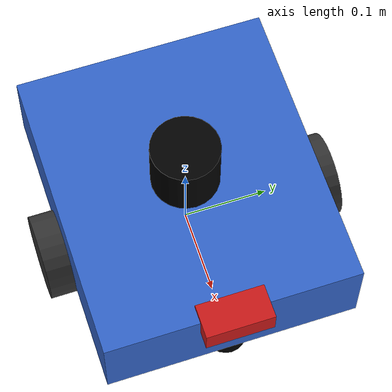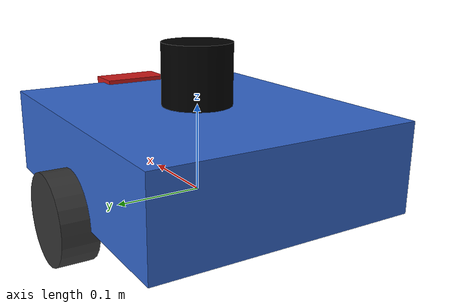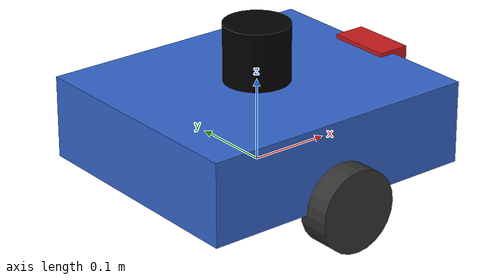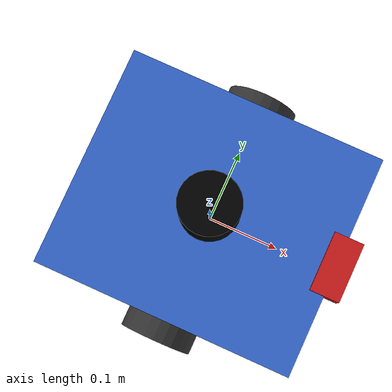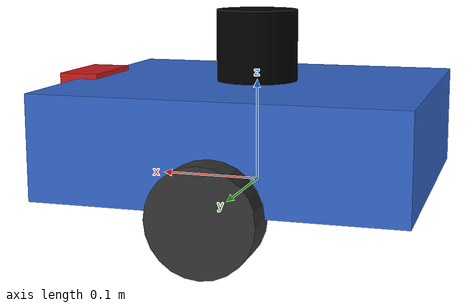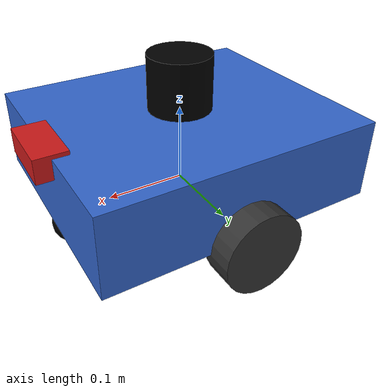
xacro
<?xml version="1.0"?>
<!-- ROS 2 Jazzy + Gazebo Harmonic (ros_gz) compatible URDF -->
<robot name="my_robot" xmlns:xacro="http://www.ros.org/wiki/xacro">

  <!--        PROPERTIES             -->
  <xacro:property name="base_width"       value="0.30"/>
  <xacro:property name="base_length"      value="0.35"/>
  <xacro:property name="base_height"      value="0.10"/>
  <xacro:property name="base_mass"        value="2.0"/>

  <xacro:property name="wheel_radius"     value="0.05"/>
  <xacro:property name="wheel_width"      value="0.04"/>
  <xacro:property name="wheel_mass"       value="0.3"/>
  <xacro:property name="wheel_separation" value="0.32"/>

  <xacro:property name="caster_radius"    value="0.025"/>
  <xacro:property name="caster_mass"      value="0.1"/>

  <!--           MATERIALS           -->
  <material name="blue"><color rgba="0.2 0.4 0.8 1.0"/></material>
  <material name="dark_grey"><color rgba="0.2 0.2 0.2 1.0"/></material>
  <material name="black"><color rgba="0.0 0.0 0.0 1.0"/></material>
  <material name="red"><color rgba="0.8 0.1 0.1 1.0"/></material>

  <!--       INERTIA MACROS          -->
  <xacro:macro name="box_inertia" params="m x y z">
    <inertial>
      <mass value="${m}"/>
      <inertia ixx="${m*(y*y+z*z)/12}" ixy="0" ixz="0"
               iyy="${m*(x*x+z*z)/12}" iyz="0"
               izz="${m*(x*x+y*y)/12}"/>
    </inertial>
  </xacro:macro>

  <xacro:macro name="cylinder_inertia" params="m r h">
    <inertial>
      <mass value="${m}"/>
      <inertia ixx="${m*(3*r*r+h*h)/12}" ixy="0" ixz="0"
               iyy="${m*(3*r*r+h*h)/12}" iyz="0"
               izz="${m*r*r/2}"/>
    </inertial>
  </xacro:macro>

  <xacro:macro name="sphere_inertia" params="m r">
    <inertial>
      <mass value="${m}"/>
      <inertia ixx="${2*m*r*r/5}" ixy="0" ixz="0"
               iyy="${2*m*r*r/5}" iyz="0"
               izz="${2*m*r*r/5}"/>
    </inertial>
  </xacro:macro>

  <!--        BASE FOOTPRINT         -->
  <link name="base_footprint">
    <visual><geometry><box size="0.001 0.001 0.001"/></geometry></visual>
  </link>

  <joint name="base_footprint_joint" type="fixed">
    <parent link="base_footprint"/>
    <child  link="base_link"/>
    <origin xyz="0 0 ${wheel_radius}" rpy="0 0 0"/>
  </joint>

  <!--          BASE LINK            -->
  <link name="base_link">
    <visual>
      <geometry><box size="${base_length} ${base_width} ${base_height}"/></geometry>
      <material name="blue"/>
    </visual>
    <collision>
      <geometry><box size="${base_length} ${base_width} ${base_height}"/></geometry>
    </collision>
    <xacro:box_inertia m="${base_mass}" x="${base_length}" y="${base_width}" z="${base_height}"/>
  </link>

  <!--     WHEEL MACRO               -->
  <xacro:macro name="wheel" params="prefix y_reflect">
    <link name="${prefix}_wheel">
      <visual>
        <origin xyz="0 0 0" rpy="${pi/2} 0 0"/>
        <geometry><cylinder radius="${wheel_radius}" length="${wheel_width}"/></geometry>
        <material name="dark_grey"/>
      </visual>
      <collision>
        <origin xyz="0 0 0" rpy="${pi/2} 0 0"/>
        <geometry><cylinder radius="${wheel_radius}" length="${wheel_width}"/></geometry>
      </collision>
      <xacro:cylinder_inertia m="${wheel_mass}" r="${wheel_radius}" h="${wheel_width}"/>
    </link>

    <joint name="${prefix}_wheel_joint" type="continuous">
      <parent link="base_link"/>
      <child  link="${prefix}_wheel"/>
      <origin xyz="0 ${y_reflect * wheel_separation/2} ${-base_height/2}" rpy="0 0 0"/>
      <axis xyz="0 1 0"/>
      <dynamics damping="0.1" friction="0.1"/>
    </joint>
  </xacro:macro>

  <xacro:wheel prefix="left"  y_reflect="1"/>
  <xacro:wheel prefix="right" y_reflect="-1"/>

  <!--     FRONT CASTER WHEEL        -->
  <link name="front_caster">
    <visual>
      <geometry><sphere radius="${caster_radius}"/></geometry>
      <material name="black"/>
    </visual>
    <collision>
      <geometry><sphere radius="${caster_radius}"/></geometry>
    </collision>
    <xacro:sphere_inertia m="${caster_mass}" r="${caster_radius}"/>
  </link>

  <joint name="front_caster_joint" type="fixed">
    <parent link="base_link"/>
    <child  link="front_caster"/>
    <origin xyz="${base_length/2 - caster_radius} 0 ${-base_height/2 - caster_radius + 0.01}" rpy="0 0 0"/>
  </joint>

  <!--       LIDAR LINK              -->
  <link name="lidar_link">
    <visual>
      <geometry><cylinder radius="0.04" length="0.07"/></geometry>
      <material name="black"/>
    </visual>
    <collision>
      <geometry><cylinder radius="0.04" length="0.07"/></geometry>
    </collision>
    <xacro:cylinder_inertia m="0.1" r="0.04" h="0.07"/>
  </link>

  <joint name="lidar_joint" type="fixed">
    <parent link="base_link"/>
    <child  link="lidar_link"/>
    <origin xyz="0 0 ${base_height/2 + 0.035}" rpy="0 0 0"/>
  </joint>

  <!--       CAMERA LINK             -->
  <link name="camera_link">
    <visual>
      <geometry><box size="0.04 0.08 0.03"/></geometry>
      <material name="red"/>
    </visual>
    <collision>
      <geometry><box size="0.04 0.08 0.03"/></geometry>
    </collision>
    <xacro:box_inertia m="0.05" x="0.04" y="0.08" z="0.03"/>
  </link>

  <joint name="camera_joint" type="fixed">
    <parent link="base_link"/>
    <child  link="camera_link"/>
    <origin xyz="${base_length/2} 0 ${base_height/2 - 0.01}" rpy="0 0 0"/>
  </joint>

  <link name="camera_optical_link"/>
  <joint name="camera_optical_joint" type="fixed">
    <parent link="camera_link"/>
    <child  link="camera_optical_link"/>
    <origin xyz="0 0 0" rpy="${-pi/2} 0 ${-pi/2}"/>
  </joint>

  <!--  GAZEBO HARMONIC PLUGINS (ros_gz style) -->
  <!--  Works with ROS 2 Jazzy                 -->

  <!-- Differential Drive -->
  <gazebo>
    <plugin filename="gz-sim-diff-drive-system"
            name="gz::sim::systems::DiffDrive">
      <left_joint>left_wheel_joint</left_joint>
      <right_joint>right_wheel_joint</right_joint>
      <wheel_separation>${wheel_separation}</wheel_separation>
      <wheel_radius>${wheel_radius}</wheel_radius>
      <max_linear_acceleration>1.0</max_linear_acceleration>
      <max_angular_acceleration>2.0</max_angular_acceleration>
      <max_linear_velocity>0.5</max_linear_velocity>
      <max_angular_velocity>1.0</max_angular_velocity>
      <topic>cmd_vel</topic>
      <odom_topic>odom</odom_topic>
      <tf_topic>/tf</tf_topic>
      <frame_id>odom</frame_id>
      <child_frame_id>base_footprint</child_frame_id>
      <odom_publish_frequency>30</odom_publish_frequency>
    </plugin>
  </gazebo>

  <!-- Joint State Publisher (publishes wheel states) -->
  <gazebo>
    <plugin filename="gz-sim-joint-state-publisher-system"
            name="gz::sim::systems::JointStatePublisher">
      <topic>joint_states</topic>
      <joint_name>left_wheel_joint</joint_name>
      <joint_name>right_wheel_joint</joint_name>
    </plugin>
  </gazebo>

  <!-- Lidar / Laser Scanner -->
  <gazebo reference="lidar_link">
    <sensor name="lidar_sensor" type="gpu_lidar">
      <topic>scan</topic>
      <update_rate>10</update_rate>
      <gz_frame_id>lidar_link</gz_frame_id>
      <lidar>
        <scan>
          <horizontal>
            <samples>360</samples>
            <resolution>1</resolution>
            <min_angle>-3.14159</min_angle>
            <max_angle>3.14159</max_angle>
          </horizontal>
          <vertical>
            <samples>1</samples>
            <min_angle>0</min_angle>
            <max_angle>0</max_angle>
          </vertical>
        </scan>
        <range>
          <min>0.12</min>
          <max>10.0</max>
          <resolution>0.01</resolution>
        </range>
        <noise>
          <type>gaussian</type>
          <mean>0.0</mean>
          <stddev>0.01</stddev>
        </noise>
      </lidar>
      <always_on>true</always_on>
      <visualize>true</visualize>
    </sensor>
    <material>
      <ambient>0 0 0 1</ambient>
      <diffuse>0 0 0 1</diffuse>
    </material>
  </gazebo>

  <!-- Camera -->
  <gazebo reference="camera_link">
    <sensor name="camera_sensor" type="camera">
      <topic>camera/image_raw</topic>
      <update_rate>30</update_rate>
      <gz_frame_id>camera_optical_link</gz_frame_id>
      <camera>
        <horizontal_fov>1.3962634</horizontal_fov>
        <image>
          <width>640</width>
          <height>480</height>
          <format>RGB_INT8</format>
        </image>
        <clip>
          <near>0.05</near>
          <far>20.0</far>
        </clip>
        <noise>
          <type>gaussian</type>
          <mean>0.0</mean>
          <stddev>0.007</stddev>
        </noise>
      </camera>
      <always_on>true</always_on>
      <visualize>true</visualize>
    </sensor>
    <material>
      <ambient>0.8 0.1 0.1 1</ambient>
      <diffuse>0.8 0.1 0.1 1</diffuse>
    </material>
  </gazebo>

  <!-- Base material -->
  <gazebo reference="base_link">
    <material><ambient>0.2 0.4 0.8 1</ambient><diffuse>0.2 0.4 0.8 1</diffuse></material>
  </gazebo>
  <gazebo reference="left_wheel">
    <mu1>1.0</mu1><mu2>1.0</mu2>
    <material><ambient>0.2 0.2 0.2 1</ambient><diffuse>0.2 0.2 0.2 1</diffuse></material>
  </gazebo>
  <gazebo reference="right_wheel">
    <mu1>1.0</mu1><mu2>1.0</mu2>
    <material><ambient>0.2 0.2 0.2 1</ambient><diffuse>0.2 0.2 0.2 1</diffuse></material>
  </gazebo>
  <gazebo reference="front_caster">
    <mu1>0.01</mu1><mu2>0.01</mu2>
    <material><ambient>0 0 0 1</ambient><diffuse>0 0 0 1</diffuse></material>
  </gazebo>

</robot>
